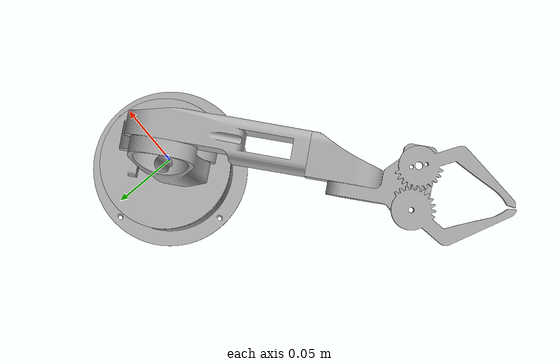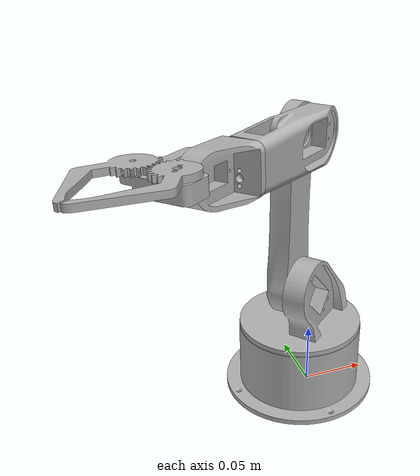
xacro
<?xml version="1.0" ?>
<robot name="arc_robot_arm_urdf" xmlns:xacro="http://www.ros.org/wiki/xacro">

<xacro:include filename="$(find arc_robot_arm_urdf_description)/urdf/materials.xacro" />
<xacro:include filename="$(find arc_robot_arm_urdf_description)/urdf/arc_robot_arm_urdf.trans" />
<xacro:include filename="$(find arc_robot_arm_urdf_description)/urdf/arc_robot_arm_urdf.gazebo" />
<link name="base_link">
  <inertial>
    <origin rpy="0 0 0" xyz="-0.0061067465353758 0.004245220451651192 0.022482908442763117"/>
    <mass value="0.7538944695406217"/>
    <inertia ixx="0.001048" ixy="-3.7e-05" ixz="1.9e-05" iyy="0.001037" iyz="2.7e-05" izz="0.001633"/>
  </inertial>
  <visual>
    <origin rpy="0 0 0" xyz="0 0 0"/>
    <geometry>
      <mesh filename="package://arc_robot_arm_urdf_description/meshes/base_link.stl" scale="0.001 0.001 0.001"/>
    </geometry>
    <material name="silver"/>
  </visual>
  <collision>
    <origin rpy="0 0 0" xyz="0 0 0"/>
    <geometry>
      <mesh filename="package://arc_robot_arm_urdf_description/meshes/base_link.stl" scale="0.001 0.001 0.001"/>
    </geometry>
  </collision>
</link>

<link name="link_1_v1_1">
  <inertial>
    <origin rpy="0 0 0" xyz="0.003004788195336593 -0.005729527054302647 0.01733071933541839"/>
    <mass value="0.5341010747394327"/>
    <inertia ixx="0.0004" ixy="-5.2e-05" ixz="1.2e-05" iyy="0.00041" iyz="6.3e-05" izz="0.000429"/>
  </inertial>
  <visual>
    <origin rpy="0 0 0" xyz="0.006279 -0.004346 -0.056179"/>
    <geometry>
      <mesh filename="package://arc_robot_arm_urdf_description/meshes/link_1_v1_1.stl" scale="0.001 0.001 0.001"/>
    </geometry>
    <material name="silver"/>
  </visual>
  <collision>
    <origin rpy="0 0 0" xyz="0.006279 -0.004346 -0.056179"/>
    <geometry>
      <mesh filename="package://arc_robot_arm_urdf_description/meshes/link_1_v1_1.stl" scale="0.001 0.001 0.001"/>
    </geometry>
  </collision>
</link>

<link name="link_2_v1_1">
  <inertial>
    <origin rpy="0 0 0" xyz="-0.003917799059977441 0.007344369307962232 0.05913220031519059"/>
    <mass value="0.5015278384318742"/>
    <inertia ixx="0.000855" ixy="-1.9e-05" ixz="-1.5e-05" iyy="0.000862" iyz="-1.6e-05" izz="7.2e-05"/>
  </inertial>
  <visual>
    <origin rpy="0 0 0" xyz="0.014548 0.007395 -0.096499"/>
    <geometry>
      <mesh filename="package://arc_robot_arm_urdf_description/meshes/link_2_v1_1.stl" scale="0.001 0.001 0.001"/>
    </geometry>
    <material name="silver"/>
  </visual>
  <collision>
    <origin rpy="0 0 0" xyz="0.014548 0.007395 -0.096499"/>
    <geometry>
      <mesh filename="package://arc_robot_arm_urdf_description/meshes/link_2_v1_1.stl" scale="0.001 0.001 0.001"/>
    </geometry>
  </collision>
</link>

<link name="gear2_v1_1">
  <inertial>
    <origin rpy="0 0 0" xyz="-0.010701097239873197 -0.010248134925377461 0.0025949055535464116"/>
    <mass value="0.027479876879980724"/>
    <inertia ixx="5e-06" ixy="-4e-06" ixz="0.0" iyy="7e-06" iyz="0.0" izz="1.1e-05"/>
  </inertial>
  <visual>
    <origin rpy="0 0 0" xyz="0.124808 0.111859 -0.239413"/>
    <geometry>
      <mesh filename="package://arc_robot_arm_urdf_description/meshes/gear2_v1_1.stl" scale="0.001 0.001 0.001"/>
    </geometry>
    <material name="silver"/>
  </visual>
  <collision>
    <origin rpy="0 0 0" xyz="0.124808 0.111859 -0.239413"/>
    <geometry>
      <mesh filename="package://arc_robot_arm_urdf_description/meshes/gear2_v1_1.stl" scale="0.001 0.001 0.001"/>
    </geometry>
  </collision>
</link>

<link name="gear1_v1_1">
  <inertial>
    <origin rpy="0 0 0" xyz="-0.012476208530257826 -0.007603268645116054 0.0024608496045445682"/>
    <mass value="0.028106280846863212"/>
    <inertia ixx="5e-06" ixy="-4e-06" ixz="0.0" iyy="7e-06" iyz="0.0" izz="1.1e-05"/>
  </inertial>
  <visual>
    <origin rpy="0 0 0" xyz="0.142023 0.091215 -0.238377"/>
    <geometry>
      <mesh filename="package://arc_robot_arm_urdf_description/meshes/gear1_v1_1.stl" scale="0.001 0.001 0.001"/>
    </geometry>
    <material name="silver"/>
  </visual>
  <collision>
    <origin rpy="0 0 0" xyz="0.142023 0.091215 -0.238377"/>
    <geometry>
      <mesh filename="package://arc_robot_arm_urdf_description/meshes/gear1_v1_1.stl" scale="0.001 0.001 0.001"/>
    </geometry>
  </collision>
</link>

<link name="gripper_base_v1_1">
  <inertial>
    <origin rpy="0 0 0" xyz="-0.013700588821693407 -0.013432166948005697 0.005812130546821476"/>
    <mass value="0.10839935246360793"/>
    <inertia ixx="3.7e-05" ixy="-1.2e-05" ixz="5e-06" iyy="2.2e-05" iyz="8e-06" izz="4.6e-05"/>
  </inertial>
  <visual>
    <origin rpy="0 0 0" xyz="0.107121 0.074593 -0.223325"/>
    <geometry>
      <mesh filename="package://arc_robot_arm_urdf_description/meshes/gripper_base_v1_1.stl" scale="0.001 0.001 0.001"/>
    </geometry>
    <material name="silver"/>
  </visual>
  <collision>
    <origin rpy="0 0 0" xyz="0.107121 0.074593 -0.223325"/>
    <geometry>
      <mesh filename="package://arc_robot_arm_urdf_description/meshes/gripper_base_v1_1.stl" scale="0.001 0.001 0.001"/>
    </geometry>
  </collision>
</link>

<link name="link_4_v1_1">
  <inertial>
    <origin rpy="0 0 0" xyz="-0.016942437858265463 -0.006965566795622061 0.005991627929883364"/>
    <mass value="0.1295112121194818"/>
    <inertia ixx="2.4e-05" ixy="-8e-06" ixz="1e-06" iyy="3.6e-05" iyz="-0.0" izz="3.1e-05"/>
  </inertial>
  <visual>
    <origin rpy="0 0 0" xyz="0.076785 0.067854 -0.217054"/>
    <geometry>
      <mesh filename="package://arc_robot_arm_urdf_description/meshes/link_4_v1_1.stl" scale="0.001 0.001 0.001"/>
    </geometry>
    <material name="silver"/>
  </visual>
  <collision>
    <origin rpy="0 0 0" xyz="0.076785 0.067854 -0.217054"/>
    <geometry>
      <mesh filename="package://arc_robot_arm_urdf_description/meshes/link_4_v1_1.stl" scale="0.001 0.001 0.001"/>
    </geometry>
  </collision>
</link>

<link name="link_3_v1_1">
  <inertial>
    <origin rpy="0 0 0" xyz="-0.02543692230594534 -0.03072948509594812 0.0026338069795326935"/>
    <mass value="0.39461490281663475"/>
    <inertia ixx="0.000232" ixy="-0.000188" ixz="1.8e-05" iyy="0.000299" iyz="1.5e-05" izz="0.000427"/>
  </inertial>
  <visual>
    <origin rpy="0 0 0" xyz="0.012404 0.004655 -0.216448"/>
    <geometry>
      <mesh filename="package://arc_robot_arm_urdf_description/meshes/link_3_v1_1.stl" scale="0.001 0.001 0.001"/>
    </geometry>
    <material name="silver"/>
  </visual>
  <collision>
    <origin rpy="0 0 0" xyz="0.012404 0.004655 -0.216448"/>
    <geometry>
      <mesh filename="package://arc_robot_arm_urdf_description/meshes/link_3_v1_1.stl" scale="0.001 0.001 0.001"/>
    </geometry>
  </collision>
</link>

<joint name="Rev1" type="continuous">
  <origin rpy="0 0 0" xyz="-0.006279 0.004346 0.056179"/>
  <parent link="base_link"/>
  <child link="link_1_v1_1"/>
  <axis xyz="-0.002854 0.005633 0.99998"/>
</joint>

<joint name="Rev2" type="continuous">
  <origin rpy="0 0 0" xyz="-0.008269 -0.011741 0.04032"/>
  <parent link="link_1_v1_1"/>
  <child link="link_2_v1_1"/>
  <axis xyz="-0.638789 0.769358 -0.006157"/>
</joint>

<joint name="Rev6" type="continuous">
  <origin rpy="0 0 0" xyz="-0.017687 -0.037266 0.016088"/>
  <parent link="gripper_base_v1_1"/>
  <child link="gear2_v1_1"/>
  <axis xyz="0.00405 0.053471 0.998561"/>
</joint>

<joint name="Rev7" type="continuous">
  <origin rpy="0 0 0" xyz="-0.034902 -0.016622 0.015052"/>
  <parent link="gripper_base_v1_1"/>
  <child link="gear1_v1_1"/>
  <axis xyz="0.00405 0.053471 0.998561"/>
</joint>

<joint name="Rev5" type="continuous">
  <origin rpy="0 0 0" xyz="-0.030336 -0.006739 0.006271"/>
  <parent link="link_4_v1_1"/>
  <child link="gripper_base_v1_1"/>
  <axis xyz="0.639951 -0.767451 0.0385"/>
</joint>

<joint name="Rev4" type="continuous">
  <origin rpy="0 0 0" xyz="-0.064381 -0.063199 0.000606"/>
  <parent link="link_3_v1_1"/>
  <child link="link_4_v1_1"/>
  <axis xyz="-0.767993 -0.637134 0.065163"/>
</joint>

<joint name="Rev3" type="continuous">
  <origin rpy="0 0 0" xyz="0.002144 0.00274 0.119949"/>
  <parent link="link_2_v1_1"/>
  <child link="link_3_v1_1"/>
  <axis xyz="0.638789 -0.769358 0.006157"/>
</joint>

</robot>

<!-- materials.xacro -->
<robot name="arc_robot_arm_urdf" xmlns:xacro="http://www.ros.org/wiki/xacro" >

<material name="silver">
  <color rgba="0.700 0.700 0.700 1.000"/>
</material>

</robot>

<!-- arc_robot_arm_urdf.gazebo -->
<robot name="arc_robot_arm_urdf" xmlns:xacro="http://www.ros.org/wiki/xacro" >

<xacro:property name="body_color" value="Gazebo/Silver" />

<gazebo>
  <plugin filename="libgazebo_ros_control.so" name="control"/>
</gazebo>
<gazebo reference="base_link">
  <material>${body_color}</material>
  <mu1>0.2</mu1>
  <mu2>0.2</mu2>
  <selfCollide>true</selfCollide>
  <gravity>true</gravity>
</gazebo>

<gazebo reference="link_1_v1_1">
  <material>${body_color}</material>
  <mu1>0.2</mu1>
  <mu2>0.2</mu2>
  <selfCollide>true</selfCollide>
</gazebo>

<gazebo reference="link_2_v1_1">
  <material>${body_color}</material>
  <mu1>0.2</mu1>
  <mu2>0.2</mu2>
  <selfCollide>true</selfCollide>
</gazebo>

<gazebo reference="gear2_v1_1">
  <material>${body_color}</material>
  <mu1>0.2</mu1>
  <mu2>0.2</mu2>
  <selfCollide>true</selfCollide>
</gazebo>

<gazebo reference="gear1_v1_1">
  <material>${body_color}</material>
  <mu1>0.2</mu1>
  <mu2>0.2</mu2>
  <selfCollide>true</selfCollide>
</gazebo>

<gazebo reference="gripper_base_v1_1">
  <material>${body_color}</material>
  <mu1>0.2</mu1>
  <mu2>0.2</mu2>
  <selfCollide>true</selfCollide>
</gazebo>

<gazebo reference="link_4_v1_1">
  <material>${body_color}</material>
  <mu1>0.2</mu1>
  <mu2>0.2</mu2>
  <selfCollide>true</selfCollide>
</gazebo>

<gazebo reference="link_3_v1_1">
  <material>${body_color}</material>
  <mu1>0.2</mu1>
  <mu2>0.2</mu2>
  <selfCollide>true</selfCollide>
</gazebo>

</robot>
